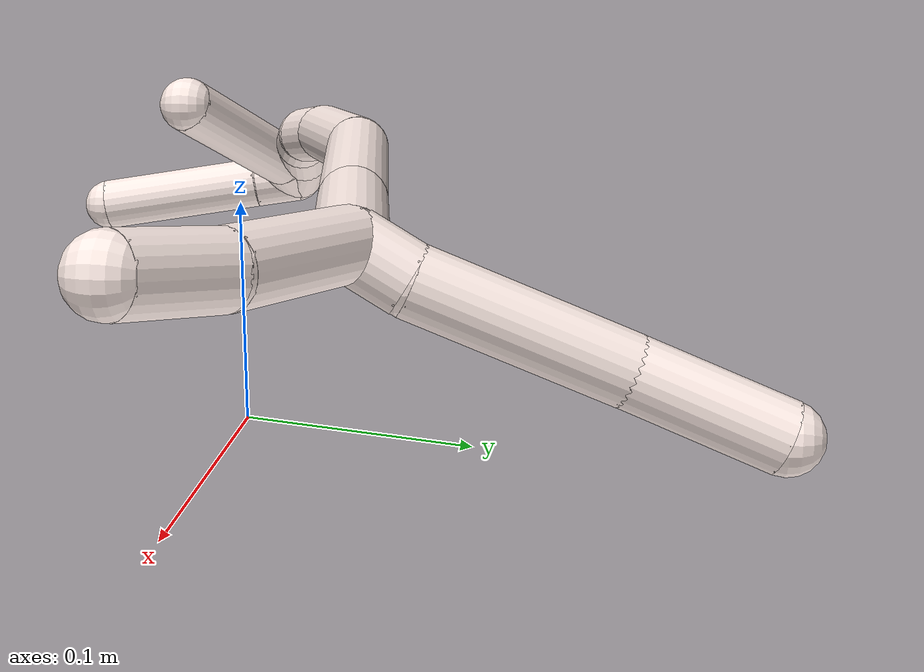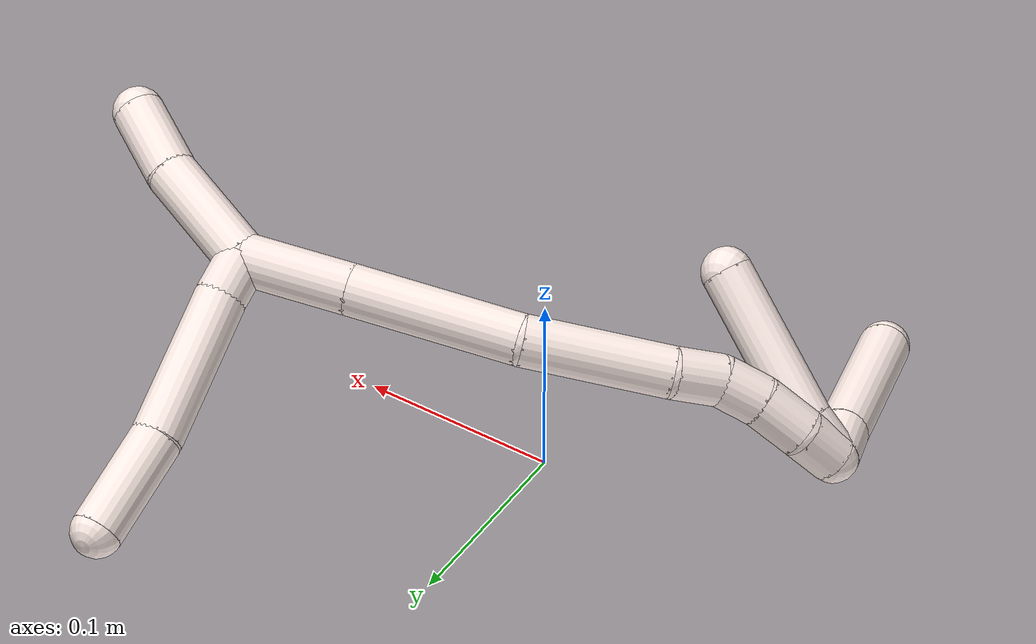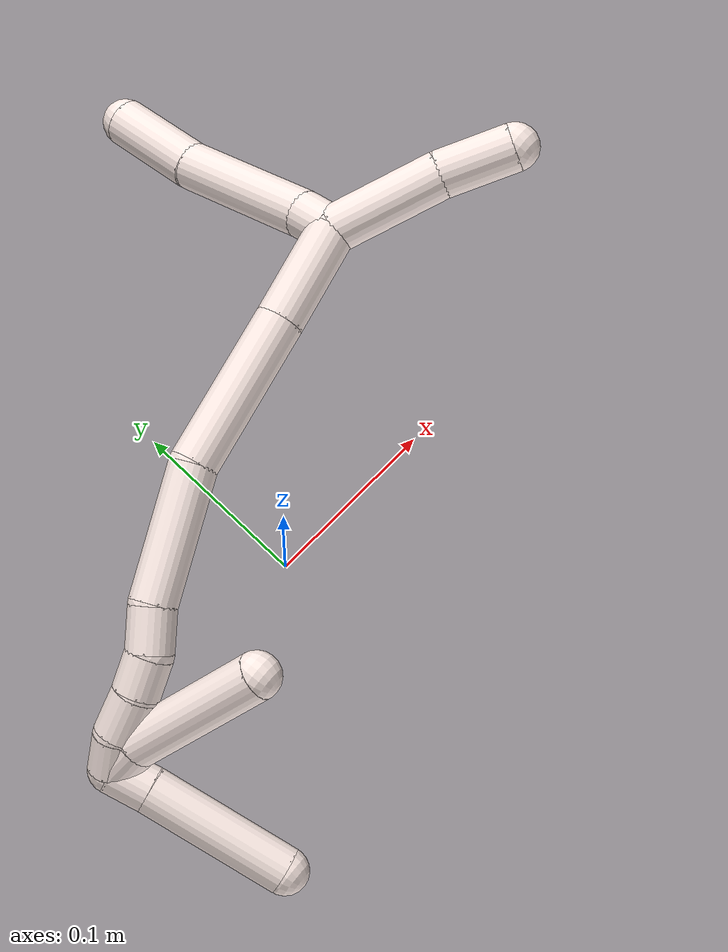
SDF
<sdf version="1.7">
 <world name="default">
  <model name="photoneo_s_sensor">
   <static>1</static>
   <pose>0 0 2 1.57079 1.57079 3.14159</pose>
   <link name="link">
    <inertial><mass>0.1</mass></inertial>
    <sensor name="sensor" type="depth">
     <update_rate>30</update_rate>
     <camera>
      <horizontal_fov>1.22</horizontal_fov>
      <image><width>1920</width><height>1200</height><format>B8G8R8</format></image>
      <clip><near>0.1</near><far>4</far></clip>
      <depth_camera><output>points</output></depth_camera>
     </camera>
     <plugin name="camera_plugin" filename="libgazebo_ros_depth_camera.so">
      <baseline>0.2</baseline>
      <alwaysOn>1</alwaysOn>
      <updateRate>0.0</updateRate>
      <cameraName>camera_ir</cameraName>
      <imageTopicName>/camera/color/image_raw</imageTopicName>
      <cameraInfoTopicName>/camera/color/camera_info</cameraInfoTopicName>
      <depthImageTopicName>/camera/depth/image_raw</depthImageTopicName>
      <depthImageCameraInfoTopicName>/camera/depth/camera_info</depthImageCameraInfoTopicName>
      <pointCloudTopicName>/camera/depth/points</pointCloudTopicName>
      <frameName>fr_optical</frameName>
      <pointCloudCutoff>0.1</pointCloudCutoff>
      <pointCloudCutoffMax>2.0</pointCloudCutoffMax>
      <distortionK1>0</distortionK1>
      <distortionK2>0</distortionK2>
      <distortionK3>0</distortionK3>
      <distortionT1>0</distortionT1>
      <distortionT2>0</distortionT2>
      <CxPrime>0</CxPrime>
      <Cx>0</Cx>
      <Cy>0</Cy>
      <focalLength>0</focalLength>
      <hackBaseline>0</hackBaseline>
     </plugin>
    </sensor>
   </link>
  </model>
  <model name="bin">
   <static>1</static>
   <link name="bottom">
    <collision name="collision-bottom">
     <pose>0 0 -0.01 0 -0 0</pose>
     <geometry><box><size>0.8 0.6 0.02</size></box></geometry>
     <surface>
      <friction><ode><mu>100</mu><mu2>100</mu2></ode></friction>
      <contact><collide_bitmask>65535</collide_bitmask></contact>
     </surface>
    </collision>
   </link>
   <link name="west_wall">
    <collision name="collision-west_wall">
     <pose>-0.41 0 0.1 0 -0 0</pose>
     <geometry><box><size>0.02 0.6 0.2</size></box></geometry>
     <surface>
      <friction><ode><mu>100</mu><mu2>100</mu2></ode></friction>
      <contact><collide_bitmask>65535</collide_bitmask></contact>
     </surface>
    </collision>
   </link>
   <link name="east_wall">
    <collision name="collision-east_wall">
     <pose>0.41 0 0.1 0 -0 0</pose>
     <geometry><box><size>0.02 0.6 0.2</size></box></geometry>
     <surface>
      <friction><ode><mu>100</mu><mu2>100</mu2></ode></friction>
      <contact><collide_bitmask>65535</collide_bitmask></contact>
     </surface>
    </collision>
   </link>
   <link name="south_wall">
    <collision name="collision-south_wall">
     <pose>0 -0.31 0.1 0 -0 0</pose>
     <geometry><box><size>0.8 0.02 0.2</size></box></geometry>
     <surface>
      <friction><ode><mu>100</mu><mu2>100</mu2></ode></friction>
      <contact><collide_bitmask>65535</collide_bitmask></contact>
     </surface>
    </collision>
   </link>
   <link name="north_wall">
    <collision name="collision-north_wall">
     <pose>0 0.31 0.1 0 -0 0</pose>
     <geometry><box><size>0.8 0.02 0.2</size></box></geometry>
     <surface>
      <friction><ode><mu>100</mu><mu2>100</mu2></ode></friction>
      <contact><collide_bitmask>65535</collide_bitmask></contact>
     </surface>
    </collision>
   </link>
  </model>
  <model name="11">
   <static>0</static>
   <link name="11">
    <collision name="collision-cylinder-e_1_2_8">
     <pose>0.005537 0.000836 -0.009355 -3.05248 0.53268 -2.8176</pose>
     <geometry><cylinder><radius>0.0125</radius><length>0.021805</length></cylinder></geometry>
     <surface>
      <friction><ode><mu>1.16</mu><mu2>1.16</mu2><slip1>0</slip1><slip2>0</slip2></ode></friction>
      <contact><ode><kp>1e+06</kp><kd>1</kd><max_vel>0</max_vel><min_depth>0.001</min_depth></ode></contact>
     </surface>
    </collision>
    <visual name="visual-cylinder-e_1_2_8">
     <pose>0.005537 0.000836 -0.009355 -3.05248 0.53268 -2.8176</pose>
     <geometry><cylinder><radius>0.0125</radius><length>0.021805</length></cylinder></geometry>
     <material><ambient>1 0.933333 0.909804 1</ambient></material>
    </visual>
    <collision name="collision-cylinder-e_2_8_9">
     <pose>0.026661 -0.000941 -0.053194 3.06596 0.423437 2.79311</pose>
     <geometry><cylinder><radius>0.0125</radius><length>0.075868</length></cylinder></geometry>
     <surface>
      <friction><ode><mu>1.16</mu><mu2>1.16</mu2><slip1>0</slip1><slip2>0</slip2></ode></friction>
      <contact><ode><kp>1e+06</kp><kd>1</kd><max_vel>0</max_vel><min_depth>0.001</min_depth></ode></contact>
     </surface>
    </collision>
    <visual name="visual-cylinder-e_2_8_9">
     <pose>0.026661 -0.000941 -0.053194 3.06596 0.423437 2.79311</pose>
     <geometry><cylinder><radius>0.0125</radius><length>0.075868</length></cylinder></geometry>
     <material><ambient>1 0.933333 0.909804 1</ambient></material>
    </visual>
    <collision name="collision-cylinder-e_3_9_6">
     <pose>0.051894 -0.001981 -0.111948 -3.07682 0.377611 -2.8057</pose>
     <geometry><cylinder><radius>0.0125</radius><length>0.052327</length></cylinder></geometry>
     <surface>
      <friction><ode><mu>1.16</mu><mu2>1.16</mu2><slip1>0</slip1><slip2>0</slip2></ode></friction>
      <contact><ode><kp>1e+06</kp><kd>1</kd><max_vel>0</max_vel><min_depth>0.001</min_depth></ode></contact>
     </surface>
    </collision>
    <visual name="visual-cylinder-e_3_9_6">
     <pose>0.051894 -0.001981 -0.111948 -3.07682 0.377611 -2.8057</pose>
     <geometry><cylinder><radius>0.0125</radius><length>0.052327</length></cylinder></geometry>
     <material><ambient>1 0.933333 0.909804 1</ambient></material>
    </visual>
    <collision name="collision-cylinder-e_1_2_10">
     <pose>-0.006535 0.026564 0.012893 -1.11894 -0.217807 0.136722</pose>
     <geometry><cylinder><radius>0.0125</radius><length>0.060484</length></cylinder></geometry>
     <surface>
      <friction><ode><mu>1.16</mu><mu2>1.16</mu2><slip1>0</slip1><slip2>0</slip2></ode></friction>
      <contact><ode><kp>1e+06</kp><kd>1</kd><max_vel>0</max_vel><min_depth>0.001</min_depth></ode></contact>
     </surface>
    </collision>
    <visual name="visual-cylinder-e_1_2_10">
     <pose>-0.006535 0.026564 0.012893 -1.11894 -0.217807 0.136722</pose>
     <geometry><cylinder><radius>0.0125</radius><length>0.060484</length></cylinder></geometry>
     <material><ambient>1 0.933333 0.909804 1</ambient></material>
    </visual>
    <collision name="collision-cylinder-e_2_10_5">
     <pose>-0.018663 0.068689 0.036601 -0.96341 -0.286978 0.150778</pose>
     <geometry><cylinder><radius>0.0125</radius><length>0.039516</length></cylinder></geometry>
     <surface>
      <friction><ode><mu>1.16</mu><mu2>1.16</mu2><slip1>0</slip1><slip2>0</slip2></ode></friction>
      <contact><ode><kp>1e+06</kp><kd>1</kd><max_vel>0</max_vel><min_depth>0.001</min_depth></ode></contact>
     </surface>
    </collision>
    <visual name="visual-cylinder-e_2_10_5">
     <pose>-0.018663 0.068689 0.036601 -0.96341 -0.286978 0.150778</pose>
     <geometry><cylinder><radius>0.0125</radius><length>0.039516</length></cylinder></geometry>
     <material><ambient>1 0.933333 0.909804 1</ambient></material>
    </visual>
    <collision name="collision-cylinder-e_1_2_11">
     <pose>0.00271 -0.026176 0.004442 1.4027 0.101731 0.085944</pose>
     <geometry><cylinder><radius>0.0125</radius><length>0.053377</length></cylinder></geometry>
     <surface>
      <friction><ode><mu>1.16</mu><mu2>1.16</mu2><slip1>0</slip1><slip2>0</slip2></ode></friction>
      <contact><ode><kp>1e+06</kp><kd>1</kd><max_vel>0</max_vel><min_depth>0.001</min_depth></ode></contact>
     </surface>
    </collision>
    <visual name="visual-cylinder-e_1_2_11">
     <pose>0.00271 -0.026176 0.004442 1.4027 0.101731 0.085944</pose>
     <geometry><cylinder><radius>0.0125</radius><length>0.053377</length></cylinder></geometry>
     <material><ambient>1 0.933333 0.909804 1</ambient></material>
    </visual>
    <collision name="collision-cylinder-e_2_11_12">
     <pose>0.009531 -0.093614 0.015358 1.41516 0.09809 0.083918</pose>
     <geometry><cylinder><radius>0.0125</radius><length>0.083935</length></cylinder></geometry>
     <surface>
      <friction><ode><mu>1.16</mu><mu2>1.16</mu2><slip1>0</slip1><slip2>0</slip2></ode></friction>
      <contact><ode><kp>1e+06</kp><kd>1</kd><max_vel>0</max_vel><min_depth>0.001</min_depth></ode></contact>
     </surface>
    </collision>
    <visual name="visual-cylinder-e_2_11_12">
     <pose>0.009531 -0.093614 0.015358 1.41516 0.09809 0.083918</pose>
     <geometry><cylinder><radius>0.0125</radius><length>0.083935</length></cylinder></geometry>
     <material><ambient>1 0.933333 0.909804 1</ambient></material>
    </visual>
    <collision name="collision-cylinder-e_3_12_13">
     <pose>0.021079 -0.166995 0.035496 1.16857 0.209951 0.13913</pose>
     <geometry><cylinder><radius>0.0125</radius><length>0.07138</length></cylinder></geometry>
     <surface>
      <friction><ode><mu>1.16</mu><mu2>1.16</mu2><slip1>0</slip1><slip2>0</slip2></ode></friction>
      <contact><ode><kp>1e+06</kp><kd>1</kd><max_vel>0</max_vel><min_depth>0.001</min_depth></ode></contact>
     </surface>
    </collision>
    <visual name="visual-cylinder-e_3_12_13">
     <pose>0.021079 -0.166995 0.035496 1.16857 0.209951 0.13913</pose>
     <geometry><cylinder><radius>0.0125</radius><length>0.07138</length></cylinder></geometry>
     <material><ambient>1 0.933333 0.909804 1</ambient></material>
    </visual>
    <collision name="collision-cylinder-e_4_13_14">
     <pose>0.03218 -0.20835 0.055772 0.949491 0.311984 0.161307</pose>
     <geometry><cylinder><radius>0.0125</radius><length>0.023865</length></cylinder></geometry>
     <surface>
      <friction><ode><mu>1.16</mu><mu2>1.16</mu2><slip1>0</slip1><slip2>0</slip2></ode></friction>
      <contact><ode><kp>1e+06</kp><kd>1</kd><max_vel>0</max_vel><min_depth>0.001</min_depth></ode></contact>
     </surface>
    </collision>
    <visual name="visual-cylinder-e_4_13_14">
     <pose>0.03218 -0.20835 0.055772 0.949491 0.311984 0.161307</pose>
     <geometry><cylinder><radius>0.0125</radius><length>0.023865</length></cylinder></geometry>
     <material><ambient>1 0.933333 0.909804 1</ambient></material>
    </visual>
    <collision name="collision-cylinder-e_5_14_15">
     <pose>0.040867 -0.226538 0.065376 1.2482 0.489081 0.355593</pose>
     <geometry><cylinder><radius>0.0125</radius><length>0.021391</length></cylinder></geometry>
     <surface>
      <friction><ode><mu>1.16</mu><mu2>1.16</mu2><slip1>0</slip1><slip2>0</slip2></ode></friction>
      <contact><ode><kp>1e+06</kp><kd>1</kd><max_vel>0</max_vel><min_depth>0.001</min_depth></ode></contact>
     </surface>
    </collision>
    <visual name="visual-cylinder-e_5_14_15">
     <pose>0.040867 -0.226538 0.065376 1.2482 0.489081 0.355593</pose>
     <geometry><cylinder><radius>0.0125</radius><length>0.021391</length></cylinder></geometry>
     <material><ambient>1 0.933333 0.909804 1</ambient></material>
    </visual>
    <collision name="collision-cylinder-e_6_15_16">
     <pose>0.053045 -0.245347 0.070364 1.37104 0.618319 0.511015</pose>
     <geometry><cylinder><radius>0.0125</radius><length>0.024678</length></cylinder></geometry>
     <surface>
      <friction><ode><mu>1.16</mu><mu2>1.16</mu2><slip1>0</slip1><slip2>0</slip2></ode></friction>
      <contact><ode><kp>1e+06</kp><kd>1</kd><max_vel>0</max_vel><min_depth>0.001</min_depth></ode></contact>
     </surface>
    </collision>
    <visual name="visual-cylinder-e_6_15_16">
     <pose>0.053045 -0.245347 0.070364 1.37104 0.618319 0.511015</pose>
     <geometry><cylinder><radius>0.0125</radius><length>0.024678</length></cylinder></geometry>
     <material><ambient>1 0.933333 0.909804 1</ambient></material>
    </visual>
    <collision name="collision-cylinder-e_7_16_1">
     <pose>0.067721 -0.261931 0.075871 1.0898 0.780979 0.488997</pose>
     <geometry><cylinder><radius>0.0125</radius><length>0.021374</length></cylinder></geometry>
     <surface>
      <friction><ode><mu>1.16</mu><mu2>1.16</mu2><slip1>0</slip1><slip2>0</slip2></ode></friction>
      <contact><ode><kp>1e+06</kp><kd>1</kd><max_vel>0</max_vel><min_depth>0.001</min_depth></ode></contact>
     </surface>
    </collision>
    <visual name="visual-cylinder-e_7_16_1">
     <pose>0.067721 -0.261931 0.075871 1.0898 0.780979 0.488997</pose>
     <geometry><cylinder><radius>0.0125</radius><length>0.021374</length></cylinder></geometry>
     <material><ambient>1 0.933333 0.909804 1</ambient></material>
    </visual>
    <collision name="collision-cylinder-e_1_1_17">
     <pose>0.076311 -0.266482 0.089869 -0.204746 0.099303 -0.01021</pose>
     <geometry><cylinder><radius>0.0125</radius><length>0.021526</length></cylinder></geometry>
     <surface>
      <friction><ode><mu>1.16</mu><mu2>1.16</mu2><slip1>0</slip1><slip2>0</slip2></ode></friction>
      <contact><ode><kp>1e+06</kp><kd>1</kd><max_vel>0</max_vel><min_depth>0.001</min_depth></ode></contact>
     </surface>
    </collision>
    <visual name="visual-cylinder-e_1_1_17">
     <pose>0.076311 -0.266482 0.089869 -0.204746 0.099303 -0.01021</pose>
     <geometry><cylinder><radius>0.0125</radius><length>0.021526</length></cylinder></geometry>
     <material><ambient>1 0.933333 0.909804 1</ambient></material>
    </visual>
    <collision name="collision-cylinder-e_2_17_4">
     <pose>0.082243 -0.258208 0.138809 -0.157228 0.124301 -0.009804</pose>
     <geometry><cylinder><radius>0.0125</radius><length>0.078474</length></cylinder></geometry>
     <surface>
      <friction><ode><mu>1.16</mu><mu2>1.16</mu2><slip1>0</slip1><slip2>0</slip2></ode></friction>
      <contact><ode><kp>1e+06</kp><kd>1</kd><max_vel>0</max_vel><min_depth>0.001</min_depth></ode></contact>
     </surface>
    </collision>
    <visual name="visual-cylinder-e_2_17_4">
     <pose>0.082243 -0.258208 0.138809 -0.157228 0.124301 -0.009804</pose>
     <geometry><cylinder><radius>0.0125</radius><length>0.078474</length></cylinder></geometry>
     <material><ambient>1 0.933333 0.909804 1</ambient></material>
    </visual>
    <collision name="collision-cylinder-e_1_1_18">
     <pose>0.068398 -0.260949 0.08094 -1.37149 -0.716198 0.594273</pose>
     <geometry><cylinder><radius>0.0125</radius><length>0.020857</length></cylinder></geometry>
     <surface>
      <friction><ode><mu>1.16</mu><mu2>1.16</mu2><slip1>0</slip1><slip2>0</slip2></ode></friction>
      <contact><ode><kp>1e+06</kp><kd>1</kd><max_vel>0</max_vel><min_depth>0.001</min_depth></ode></contact>
     </surface>
    </collision>
    <visual name="visual-cylinder-e_1_1_18">
     <pose>0.068398 -0.260949 0.08094 -1.37149 -0.716198 0.594273</pose>
     <geometry><cylinder><radius>0.0125</radius><length>0.020857</length></cylinder></geometry>
     <material><ambient>1 0.933333 0.909804 1</ambient></material>
    </visual>
    <collision name="collision-cylinder-e_2_18_3">
     <pose>0.038462 -0.224741 0.097354 -1.09024 -0.622986 0.385645</pose>
     <geometry><cylinder><radius>0.0125</radius><length>0.079143</length></cylinder></geometry>
     <surface>
      <friction><ode><mu>1.16</mu><mu2>1.16</mu2><slip1>0</slip1><slip2>0</slip2></ode></friction>
      <contact><ode><kp>1e+06</kp><kd>1</kd><max_vel>0</max_vel><min_depth>0.001</min_depth></ode></contact>
     </surface>
    </collision>
    <visual name="visual-cylinder-e_2_18_3">
     <pose>0.038462 -0.224741 0.097354 -1.09024 -0.622986 0.385645</pose>
     <geometry><cylinder><radius>0.0125</radius><length>0.079143</length></cylinder></geometry>
     <material><ambient>1 0.933333 0.909804 1</ambient></material>
    </visual>
    <collision name="collision-sphere-3">
     <pose>0.015374 -0.196243 0.11221 0 -0 0</pose>
     <geometry><sphere><radius>0.0125</radius></sphere></geometry>
     <surface>
      <friction><ode><mu>1.16</mu><mu2>1.16</mu2><slip1>0</slip1><slip2>0</slip2></ode></friction>
      <contact><ode><kp>1e+06</kp><kd>1</kd><max_vel>0</max_vel><min_depth>0.001</min_depth></ode></contact>
     </surface>
    </collision>
    <visual name="visual-sphere-3">
     <pose>0.015374 -0.196243 0.11221 0 -0 0</pose>
     <geometry><sphere><radius>0.0125</radius></sphere></geometry>
     <material><ambient>1 0.933333 0.909804 1</ambient></material>
    </visual>
    <collision name="collision-sphere-5">
     <pose>-0.024255 0.084249 0.047416 0 -0 0</pose>
     <geometry><sphere><radius>0.0125</radius></sphere></geometry>
     <surface>
      <friction><ode><mu>1.16</mu><mu2>1.16</mu2><slip1>0</slip1><slip2>0</slip2></ode></friction>
      <contact><ode><kp>1e+06</kp><kd>1</kd><max_vel>0</max_vel><min_depth>0.001</min_depth></ode></contact>
     </surface>
    </collision>
    <visual name="visual-sphere-5">
     <pose>-0.024255 0.084249 0.047416 0 -0 0</pose>
     <geometry><sphere><radius>0.0125</radius></sphere></geometry>
     <material><ambient>1 0.933333 0.909804 1</ambient></material>
    </visual>
    <collision name="collision-sphere-10">
     <pose>-0.01307 0.053128 0.025785 0 -0 0</pose>
     <geometry><sphere><radius>0.0125</radius></sphere></geometry>
     <surface>
      <friction><ode><mu>1.16</mu><mu2>1.16</mu2><slip1>0</slip1><slip2>0</slip2></ode></friction>
      <contact><ode><kp>1e+06</kp><kd>1</kd><max_vel>0</max_vel><min_depth>0.001</min_depth></ode></contact>
     </surface>
    </collision>
    <visual name="visual-sphere-10">
     <pose>-0.01307 0.053128 0.025785 0 -0 0</pose>
     <geometry><sphere><radius>0.0125</radius></sphere></geometry>
     <material><ambient>1 0.933333 0.909804 1</ambient></material>
    </visual>
    <collision name="collision-sphere-6">
     <pose>0.061541 -0.000406 -0.136218 0 -0 0</pose>
     <geometry><sphere><radius>0.0125</radius></sphere></geometry>
     <surface>
      <friction><ode><mu>1.16</mu><mu2>1.16</mu2><slip1>0</slip1><slip2>0</slip2></ode></friction>
      <contact><ode><kp>1e+06</kp><kd>1</kd><max_vel>0</max_vel><min_depth>0.001</min_depth></ode></contact>
     </surface>
    </collision>
    <visual name="visual-sphere-6">
     <pose>0.061541 -0.000406 -0.136218 0 -0 0</pose>
     <geometry><sphere><radius>0.0125</radius></sphere></geometry>
     <material><ambient>1 0.933333 0.909804 1</ambient></material>
    </visual>
    <collision name="collision-sphere-9">
     <pose>0.042247 -0.003555 -0.087679 0 -0 0</pose>
     <geometry><sphere><radius>0.0125</radius></sphere></geometry>
     <surface>
      <friction><ode><mu>1.16</mu><mu2>1.16</mu2><slip1>0</slip1><slip2>0</slip2></ode></friction>
      <contact><ode><kp>1e+06</kp><kd>1</kd><max_vel>0</max_vel><min_depth>0.001</min_depth></ode></contact>
     </surface>
    </collision>
    <visual name="visual-sphere-9">
     <pose>0.042247 -0.003555 -0.087679 0 -0 0</pose>
     <geometry><sphere><radius>0.0125</radius></sphere></geometry>
     <material><ambient>1 0.933333 0.909804 1</ambient></material>
    </visual>
    <collision name="collision-sphere-2">
     <geometry><sphere><radius>0.0125</radius></sphere></geometry>
     <surface>
      <friction><ode><mu>1.16</mu><mu2>1.16</mu2><slip1>0</slip1><slip2>0</slip2></ode></friction>
      <contact><ode><kp>1e+06</kp><kd>1</kd><max_vel>0</max_vel><min_depth>0.001</min_depth></ode></contact>
     </surface>
    </collision>
    <visual name="visual-sphere-2">
     <geometry><sphere><radius>0.0125</radius></sphere></geometry>
     <material><ambient>1 0.933333 0.909804 1</ambient></material>
    </visual>
    <collision name="collision-sphere-8">
     <pose>0.011074 0.001672 -0.01871 0 -0 0</pose>
     <geometry><sphere><radius>0.0125</radius></sphere></geometry>
     <surface>
      <friction><ode><mu>1.16</mu><mu2>1.16</mu2><slip1>0</slip1><slip2>0</slip2></ode></friction>
      <contact><ode><kp>1e+06</kp><kd>1</kd><max_vel>0</max_vel><min_depth>0.001</min_depth></ode></contact>
     </surface>
    </collision>
    <visual name="visual-sphere-8">
     <pose>0.011074 0.001672 -0.01871 0 -0 0</pose>
     <geometry><sphere><radius>0.0125</radius></sphere></geometry>
     <material><ambient>1 0.933333 0.909804 1</ambient></material>
    </visual>
    <collision name="collision-sphere-11">
     <pose>0.005421 -0.052353 0.008884 0 -0 0</pose>
     <geometry><sphere><radius>0.0125</radius></sphere></geometry>
     <surface>
      <friction><ode><mu>1.16</mu><mu2>1.16</mu2><slip1>0</slip1><slip2>0</slip2></ode></friction>
      <contact><ode><kp>1e+06</kp><kd>1</kd><max_vel>0</max_vel><min_depth>0.001</min_depth></ode></contact>
     </surface>
    </collision>
    <visual name="visual-sphere-11">
     <pose>0.005421 -0.052353 0.008884 0 -0 0</pose>
     <geometry><sphere><radius>0.0125</radius></sphere></geometry>
     <material><ambient>1 0.933333 0.909804 1</ambient></material>
    </visual>
    <collision name="collision-sphere-12">
     <pose>0.013641 -0.134874 0.021832 0 -0 0</pose>
     <geometry><sphere><radius>0.0125</radius></sphere></geometry>
     <surface>
      <friction><ode><mu>1.16</mu><mu2>1.16</mu2><slip1>0</slip1><slip2>0</slip2></ode></friction>
      <contact><ode><kp>1e+06</kp><kd>1</kd><max_vel>0</max_vel><min_depth>0.001</min_depth></ode></contact>
     </surface>
    </collision>
    <visual name="visual-sphere-12">
     <pose>0.013641 -0.134874 0.021832 0 -0 0</pose>
     <geometry><sphere><radius>0.0125</radius></sphere></geometry>
     <material><ambient>1 0.933333 0.909804 1</ambient></material>
    </visual>
    <collision name="collision-sphere-13">
     <pose>0.028517 -0.199116 0.049161 0 -0 0</pose>
     <geometry><sphere><radius>0.0125</radius></sphere></geometry>
     <surface>
      <friction><ode><mu>1.16</mu><mu2>1.16</mu2><slip1>0</slip1><slip2>0</slip2></ode></friction>
      <contact><ode><kp>1e+06</kp><kd>1</kd><max_vel>0</max_vel><min_depth>0.001</min_depth></ode></contact>
     </surface>
    </collision>
    <visual name="visual-sphere-13">
     <pose>0.028517 -0.199116 0.049161 0 -0 0</pose>
     <geometry><sphere><radius>0.0125</radius></sphere></geometry>
     <material><ambient>1 0.933333 0.909804 1</ambient></material>
    </visual>
    <collision name="collision-sphere-14">
     <pose>0.035843 -0.217584 0.062382 0 -0 0</pose>
     <geometry><sphere><radius>0.0125</radius></sphere></geometry>
     <surface>
      <friction><ode><mu>1.16</mu><mu2>1.16</mu2><slip1>0</slip1><slip2>0</slip2></ode></friction>
      <contact><ode><kp>1e+06</kp><kd>1</kd><max_vel>0</max_vel><min_depth>0.001</min_depth></ode></contact>
     </surface>
    </collision>
    <visual name="visual-sphere-14">
     <pose>0.035843 -0.217584 0.062382 0 -0 0</pose>
     <geometry><sphere><radius>0.0125</radius></sphere></geometry>
     <material><ambient>1 0.933333 0.909804 1</ambient></material>
    </visual>
    <collision name="collision-sphere-15">
     <pose>0.045892 -0.235493 0.068369 0 -0 0</pose>
     <geometry><sphere><radius>0.0125</radius></sphere></geometry>
     <surface>
      <friction><ode><mu>1.16</mu><mu2>1.16</mu2><slip1>0</slip1><slip2>0</slip2></ode></friction>
      <contact><ode><kp>1e+06</kp><kd>1</kd><max_vel>0</max_vel><min_depth>0.001</min_depth></ode></contact>
     </surface>
    </collision>
    <visual name="visual-sphere-15">
     <pose>0.045892 -0.235493 0.068369 0 -0 0</pose>
     <geometry><sphere><radius>0.0125</radius></sphere></geometry>
     <material><ambient>1 0.933333 0.909804 1</ambient></material>
    </visual>
    <collision name="collision-sphere-16">
     <pose>0.060197 -0.255202 0.072359 0 -0 0</pose>
     <geometry><sphere><radius>0.0125</radius></sphere></geometry>
     <surface>
      <friction><ode><mu>1.16</mu><mu2>1.16</mu2><slip1>0</slip1><slip2>0</slip2></ode></friction>
      <contact><ode><kp>1e+06</kp><kd>1</kd><max_vel>0</max_vel><min_depth>0.001</min_depth></ode></contact>
     </surface>
    </collision>
    <visual name="visual-sphere-16">
     <pose>0.060197 -0.255202 0.072359 0 -0 0</pose>
     <geometry><sphere><radius>0.0125</radius></sphere></geometry>
     <material><ambient>1 0.933333 0.909804 1</ambient></material>
    </visual>
    <collision name="collision-sphere-1">
     <pose>0.075244 -0.26866 0.079383 0 -0 0</pose>
     <geometry><sphere><radius>0.0125</radius></sphere></geometry>
     <surface>
      <friction><ode><mu>1.16</mu><mu2>1.16</mu2><slip1>0</slip1><slip2>0</slip2></ode></friction>
      <contact><ode><kp>1e+06</kp><kd>1</kd><max_vel>0</max_vel><min_depth>0.001</min_depth></ode></contact>
     </surface>
    </collision>
    <visual name="visual-sphere-1">
     <pose>0.075244 -0.26866 0.079383 0 -0 0</pose>
     <geometry><sphere><radius>0.0125</radius></sphere></geometry>
     <material><ambient>1 0.933333 0.909804 1</ambient></material>
    </visual>
    <collision name="collision-sphere-18">
     <pose>0.061551 -0.253238 0.082498 0 -0 0</pose>
     <geometry><sphere><radius>0.0125</radius></sphere></geometry>
     <surface>
      <friction><ode><mu>1.16</mu><mu2>1.16</mu2><slip1>0</slip1><slip2>0</slip2></ode></friction>
      <contact><ode><kp>1e+06</kp><kd>1</kd><max_vel>0</max_vel><min_depth>0.001</min_depth></ode></contact>
     </surface>
    </collision>
    <visual name="visual-sphere-18">
     <pose>0.061551 -0.253238 0.082498 0 -0 0</pose>
     <geometry><sphere><radius>0.0125</radius></sphere></geometry>
     <material><ambient>1 0.933333 0.909804 1</ambient></material>
    </visual>
    <collision name="collision-sphere-17">
     <pose>0.077378 -0.264305 0.100355 0 -0 0</pose>
     <geometry><sphere><radius>0.0125</radius></sphere></geometry>
     <surface>
      <friction><ode><mu>1.16</mu><mu2>1.16</mu2><slip1>0</slip1><slip2>0</slip2></ode></friction>
      <contact><ode><kp>1e+06</kp><kd>1</kd><max_vel>0</max_vel><min_depth>0.001</min_depth></ode></contact>
     </surface>
    </collision>
    <visual name="visual-sphere-17">
     <pose>0.077378 -0.264305 0.100355 0 -0 0</pose>
     <geometry><sphere><radius>0.0125</radius></sphere></geometry>
     <material><ambient>1 0.933333 0.909804 1</ambient></material>
    </visual>
    <collision name="collision-sphere-4">
     <pose>0.087108 -0.252112 0.177263 0 -0 0</pose>
     <geometry><sphere><radius>0.0125</radius></sphere></geometry>
     <surface>
      <friction><ode><mu>1.16</mu><mu2>1.16</mu2><slip1>0</slip1><slip2>0</slip2></ode></friction>
      <contact><ode><kp>1e+06</kp><kd>1</kd><max_vel>0</max_vel><min_depth>0.001</min_depth></ode></contact>
     </surface>
    </collision>
    <visual name="visual-sphere-4">
     <pose>0.087108 -0.252112 0.177263 0 -0 0</pose>
     <geometry><sphere><radius>0.0125</radius></sphere></geometry>
     <material><ambient>1 0.933333 0.909804 1</ambient></material>
    </visual>
    <inertial>
     <pose>0.030855 -0.116947 0.032662 0 -0 0</pose>
     <mass>0.75</mass>
     <inertia>
      <ixx>0.000205</ixx>
      <ixy>0</ixy>
      <ixz>0</ixz>
      <iyy>0.000198</iyy>
      <iyz>0</iyz>
      <izz>3.7e-05</izz>
     </inertia>
    </inertial>
   </link>
   <pose>0.116175 0.079659 0.134519 -2.62883 1.53178 2.17848</pose>
  </model>
 </world>
</sdf>
